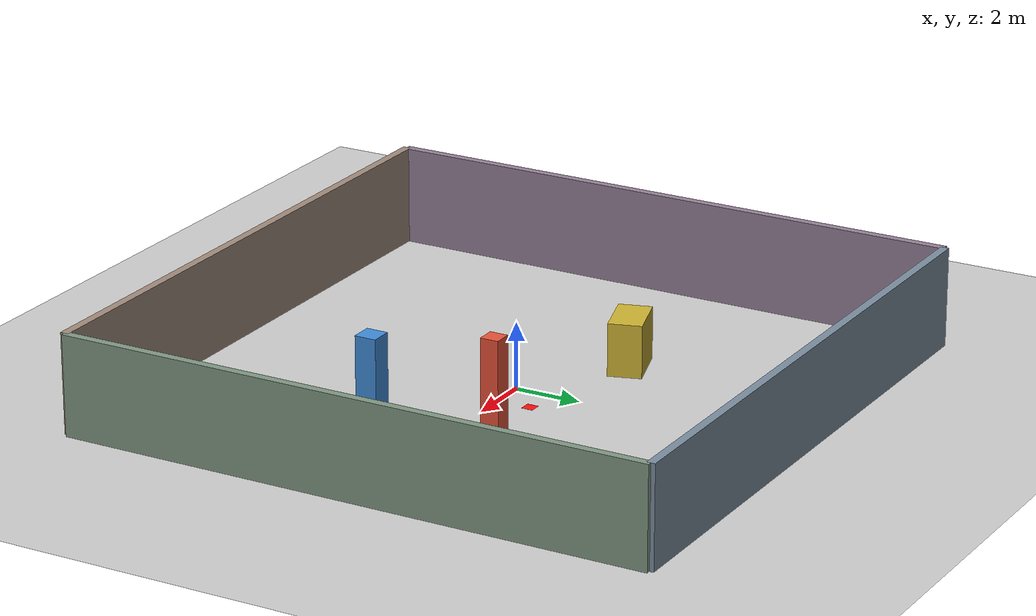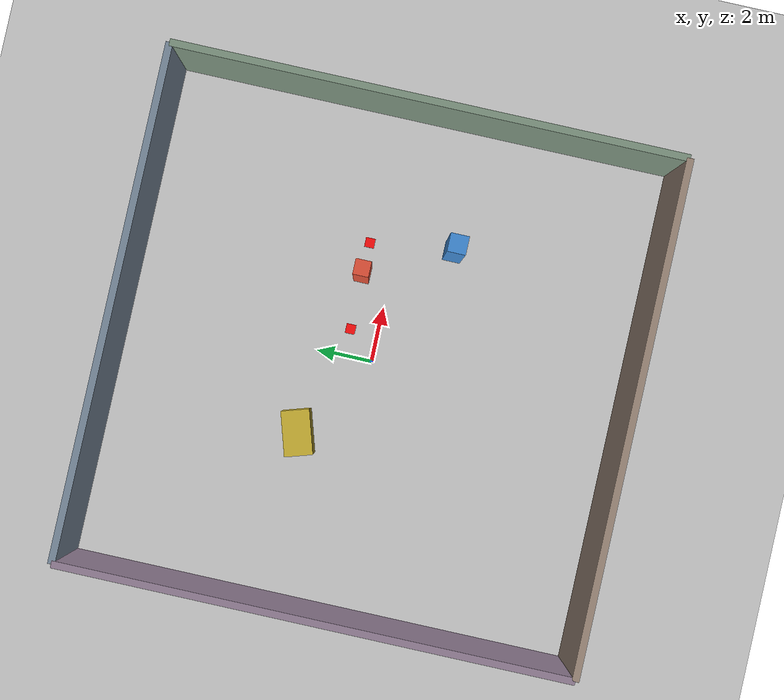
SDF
<?xml version="1.0"?>
<sdf version="1.6">
  <world name="inspection_demo">
    <gravity>0 0 -9.81</gravity>
    <include><uri>model://sun</uri></include>
    <include><uri>model://ground_plane</uri></include>
    <physics name="ode" type="ode"><max_step_size>0.002</max_step_size><real_time_update_rate>500</real_time_update_rate></physics>
    <model name="north_wall"><static>true</static><link name="wall"><pose>0 9 1.5 0 0 0</pose><collision name="collision"><geometry><box><size>18 0.25 3</size></box></geometry></collision><visual name="visual"><geometry><box><size>18 0.25 3</size></box></geometry><material><ambient>0.48 0.55 0.62 1</ambient></material></visual></link></model>
    <model name="south_wall"><static>true</static><link name="wall"><pose>0 -9 1.5 0 0 0</pose><collision name="collision"><geometry><box><size>18 0.25 3</size></box></geometry></collision><visual name="visual"><geometry><box><size>18 0.25 3</size></box></geometry><material><ambient>0.62 0.54 0.48 1</ambient></material></visual></link></model>
    <model name="east_wall"><static>true</static><link name="wall"><pose>9 0 1.5 0 0 0</pose><collision name="collision"><geometry><box><size>0.25 18 3</size></box></geometry></collision><visual name="visual"><geometry><box><size>0.25 18 3</size></box></geometry><material><ambient>0.50 0.59 0.51 1</ambient></material></visual></link></model>
    <model name="west_wall"><static>true</static><link name="wall"><pose>-9 0 1.5 0 0 0</pose><collision name="collision"><geometry><box><size>0.25 18 3</size></box></geometry></collision><visual name="visual"><geometry><box><size>0.25 18 3</size></box></geometry><material><ambient>0.58 0.50 0.59 1</ambient></material></visual></link></model>
    <model name="pillar_a"><static>true</static><link name="post"><pose>3 1 1.4 0 0 0</pose><collision name="collision"><geometry><box><size>0.55 0.55 2.8</size></box></geometry></collision><visual name="visual"><geometry><box><size>0.55 0.55 2.8</size></box></geometry><material><ambient>0.9 0.32 0.22 1</ambient></material></visual></link></model>
    <model name="pillar_b"><static>true</static><link name="post"><pose>4.5 -2 1.4 0 0 0</pose><collision name="collision"><geometry><box><size>0.65 0.65 2.8</size></box></geometry></collision><visual name="visual"><geometry><box><size>0.65 0.65 2.8</size></box></geometry><material><ambient>0.25 0.55 0.85 1</ambient></material></visual></link></model>
    <model name="inspection_machine"><static>true</static><link name="machine"><pose>-3 2 0.8 0 0 0.3</pose><collision name="collision"><geometry><box><size>1.6 1.0 1.6</size></box></geometry></collision><visual name="visual"><geometry><box><size>1.6 1.0 1.6</size></box></geometry><material><ambient>0.8 0.7 0.2 1</ambient></material></visual></link></model>
    <!-- Visual targets have no collision and do not alter flight dynamics. -->
    <model name="down_camera_target"><static>true</static><link name="target"><pose>1 1 0.003 0 0 0</pose><visual name="visual"><geometry><box><size>0.35 0.35 0.002</size></box></geometry><material><ambient>1 0.05 0.05 1</ambient><diffuse>1 0.05 0.05 1</diffuse></material></visual></link></model>
    <model name="down_camera_target_goal"><static>true</static><link name="target"><pose>4.2 1 0.003 0 0 0</pose><visual name="visual"><geometry><box><size>0.35 0.35 0.002</size></box></geometry><material><ambient>1 0.05 0.05 1</ambient><diffuse>1 0.05 0.05 1</diffuse></material></visual></link></model>
  </world>
</sdf>
